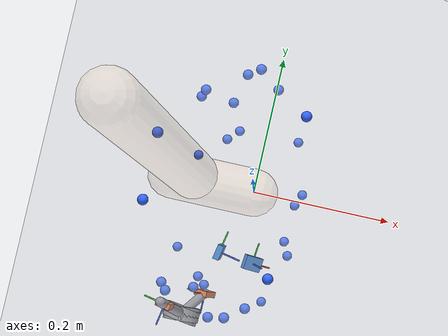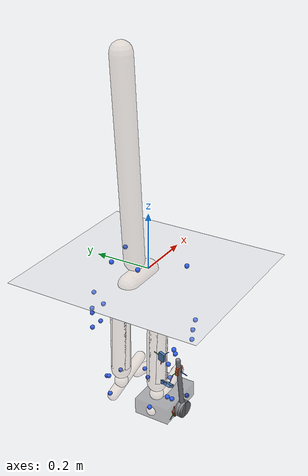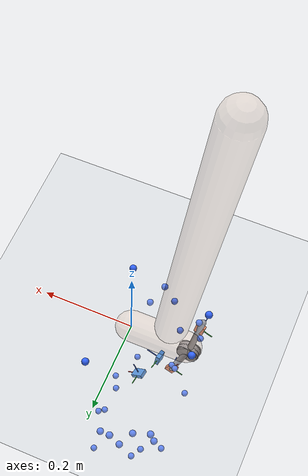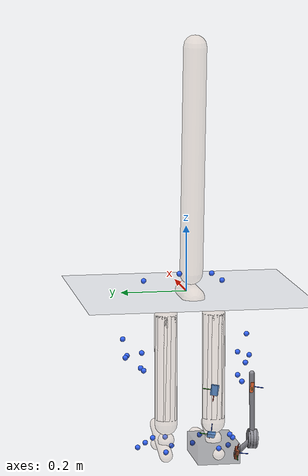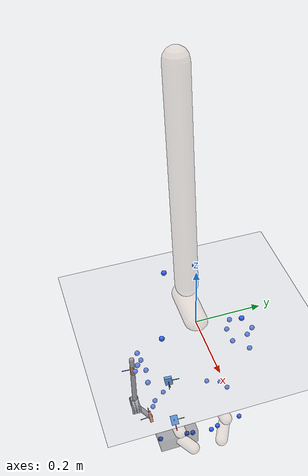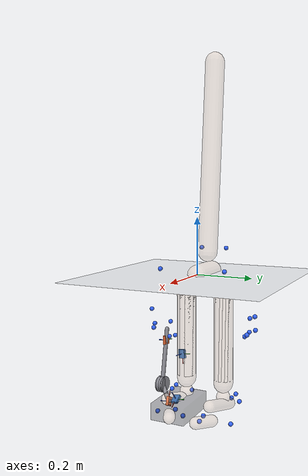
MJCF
<mujoco model="AB09">
  <compiler angle="radian" autolimits="true"/>
  <option timestep="0.005" gravity="0 0 -9.81"><flag contact="disable"/></option>
  <visual><global offwidth="1600" offheight="1200"/>
    <headlight ambient="0.55 0.55 0.55" diffuse="0.6 0.6 0.6"/></visual>
  <default><joint limited="false" damping="0"/><geom contype="0" conaffinity="0"/></default>
  <asset>
    <texture name="grid" type="2d" builtin="checker" rgb1="0.75 0.77 0.8" rgb2="0.85 0.87 0.9" width="512" height="512"/>
    <material name="grid" texture="grid" texrepeat="2 2" texuniform="true"/>
    <material name="skin" rgba="0.85 0.72 0.62 0.28"/>
  </asset>
  <worldbody>
    <light pos="0 0 4" dir="0 0 -1"/>
    <geom name="floor" type="plane" size="0 0 0.05" material="grid"/>
    <body name="pelvis" pos="0 0 0" quat="1 0 0 0">
      <joint name="pelvis_tx" type="slide" axis="1 0 0"/>
      <joint name="pelvis_ty" type="slide" axis="0 0 1"/>
      <joint name="pelvis_tz" type="slide" axis="0 -1 0"/>
      <joint name="pelvis_tilt" type="hinge" axis="0 -1 0"/>
      <joint name="pelvis_list" type="hinge" axis="1 0 0"/>
      <joint name="pelvis_rotation" type="hinge" axis="0 0 1"/>
      <inertial pos="-0.061859536 0 0" mass="10.3259" diaginertia="0.10325891 0.10325891 0.10325891"/>
      <geom type="capsule" fromto="0 0 0 -0.12371907 0 0" size="0.035" material="skin" mass="0"/>
      <site name="m_R_ASIS" pos="0.047509384 -0.11996831 0.020918417" size="0.008" rgba="0.2 0.4 1 1" group="2"/>
      <site name="m_L_ASIS" pos="0.050885207 0.12264417 0.025265311" size="0.008" rgba="0.2 0.4 1 1" group="2"/>
      <site name="m_L_PSIS" pos="-0.15024414 0.046888386 0.080831941" size="0.008" rgba="0.2 0.4 1 1" group="2"/>
      <site name="m_R_PSIS" pos="-0.14949448 -0.051097552 0.079398298" size="0.008" rgba="0.2 0.4 1 1" group="2"/>
      <body name="femur_r" pos="-0.061859536 -0.073058999 -0.057834729" quat="1 0 0 0">
        <joint name="hip_flexion_r" type="hinge" axis="0 -1 0"/>
        <joint name="hip_adduction_r" type="hinge" axis="1 0 0"/>
        <joint name="hip_rotation_r" type="hinge" axis="0 0 1"/>
        <inertial pos="0 0 -0.16166913" mass="8.15532" diaginertia="0.081553235 0.081553235 0.081553235"/>
        <geom type="capsule" fromto="0 0 0 0 0 -0.32333827" size="0.035" material="skin" mass="0"/>
        <site name="m_R_Thigh_Upper" pos="0.055259772 -0.11266386 -0.079839493" size="0.008" rgba="0.2 0.4 1 1" group="2"/>
        <site name="m_R_Thigh_Front" pos="0.082178671 -0.090508162 -0.14097637" size="0.008" rgba="0.2 0.4 1 1" group="2"/>
        <site name="m_R_Thigh_Rear" pos="0.028800814 -0.11614404 -0.14031222" size="0.008" rgba="0.2 0.4 1 1" group="2"/>
        <site name="m_R_Knee_Lat" pos="0.0011639015 -0.060341404 -0.38988233" size="0.008" rgba="0.2 0.4 1 1" group="2"/>
        <body name="tibia_r" pos="0 0 0" quat="1 0 0 0">
<geom name="gt_shank_axis_x" type="capsule" size="0.0012" fromto="0.02000 -0.00750 -0.24440 0.02248 -0.00285 -0.27900" rgba="1 0.1 0.1 1" contype="0" conaffinity="0" mass="0"/>
<geom name="gt_shank_axis_y" type="capsule" size="0.0012" fromto="0.02000 -0.00750 -0.24440 0.02676 0.02647 -0.23935" rgba="0.1 0.8 0.1 1" contype="0" conaffinity="0" mass="0"/>
<geom name="gt_shank_axis_z" type="capsule" size="0.0012" fromto="0.02000 -0.00750 -0.24440 0.05425 -0.01454 -0.24289" rgba="0.1 0.3 1 1" contype="0" conaffinity="0" mass="0"/>
<geom name="exo_shank_axis_x" type="capsule" size="0.0012" fromto="-0.04597 -0.10990 -0.22162 -0.05056 -0.11395 -0.18715" rgba="1 0.1 0.1 1" contype="0" conaffinity="0" mass="0"/>
<geom name="exo_shank_axis_y" type="capsule" size="0.0012" fromto="-0.04597 -0.10990 -0.22162 -0.08008 -0.10301 -0.22535" rgba="0.1 0.8 0.1 1" contype="0" conaffinity="0" mass="0"/>
<geom name="exo_shank_axis_z" type="capsule" size="0.0012" fromto="-0.04597 -0.10990 -0.22162 -0.05232 -0.14398 -0.22647" rgba="0.1 0.3 1 1" contype="0" conaffinity="0" mass="0"/>
<geom name="encoder_shank" type="cylinder" size="0.03 0.012" fromto="-0.02720 -0.12762 -0.38952 -0.02320 -0.10398 -0.38828" rgba="0.55 0.55 0.58 1" contype="0" conaffinity="0" mass="0"/>
<geom name="strut_shank" type="capsule" size="0.008" fromto="-0.02520 -0.11580 -0.38890 -0.05116 -0.10843 -0.17979" rgba="0.55 0.55 0.58 1" contype="0" conaffinity="0" mass="0"/>
          <joint name="knee_r_translation1" type="slide" axis="1 0 0"/>
          <joint name="knee_r_translation2" type="slide" axis="0 0 1"/>
          <joint name="knee_angle_r" type="hinge" axis="0 -1 0"/>
          <inertial pos="0 0 -0.16886778" mass="3.25068" diaginertia="0.032506786 0.032506786 0.032506786"/>
          <geom type="capsule" fromto="0 0 0 0 0 -0.33773556" size="0.035" material="skin" mass="0"/>
          <site name="m_R_Shank_Upper" pos="-0.04589035 -0.089503124 -0.14736246" size="0.008" rgba="0.2 0.4 1 1" group="2"/>
          <site name="m_R_Shank_Front" pos="-0.0060154318 -0.073565995 -0.19345982" size="0.008" rgba="0.2 0.4 1 1" group="2"/>
          <site name="m_R_Shank_Rear" pos="-0.058203396 -0.076594122 -0.20231413" size="0.008" rgba="0.2 0.4 1 1" group="2"/>
          <site name="m_R_Ankle_Lat" pos="-0.011310445 -0.048969108 -0.37708981" size="0.008" rgba="0.2 0.4 1 1" group="2"/>
          <site name="gt_shank_imu" type="box" size="0.016 0.012 0.005" pos="0.02 -0.0075 -0.2444" quat="0.72192216 0.11967651 0.68122838 -0.020828274" rgba="0.16 0.47 0.84 1" group="1"/>
          <site name="exo_shank_imu" type="box" size="0.016 0.012 0.005" pos="-0.045967 -0.109901 -0.221615" quat="-0.4813995 -0.45012343 0.60554885 -0.44604261" rgba="0.92 0.41 0.20 1" group="1"/>
          <body name="talus_r" pos="0 0 -0.38892954" quat="1 0 0 0">
            <joint name="ankle_angle_r" type="hinge" axis="-0.10501355 -0.97912632 -0.17402245"/>
            <inertial pos="0 0 0" mass="0.0876785" diaginertia="0.00087678452 0.00087678452 0.00087678452"/>
            <geom type="sphere" size="0.025" material="skin" mass="0"/>
            <body name="calcn_r" pos="-0.044111846 -0.0071635394 -0.037943242" quat="1 0 0 0">
<geom name="gt_foot_axis_x" type="capsule" size="0.0012" fromto="0.11690 0.00050 0.03060 0.14665 -0.00018 0.01217" rgba="1 0.1 0.1 1" contype="0" conaffinity="0" mass="0"/>
<geom name="gt_foot_axis_y" type="capsule" size="0.0012" fromto="0.11690 0.00050 0.03060 0.12088 0.03489 0.03575" rgba="0.1 0.8 0.1 1" contype="0" conaffinity="0" mass="0"/>
<geom name="gt_foot_axis_z" type="capsule" size="0.0012" fromto="0.11690 0.00050 0.03060 0.13490 -0.00598 0.05991" rgba="0.1 0.3 1 1" contype="0" conaffinity="0" mass="0"/>
<geom name="exo_foot_axis_x" type="capsule" size="0.0012" fromto="0.04782 -0.06562 -0.01281 0.03238 -0.06904 0.01841" rgba="1 0.1 0.1 1" contype="0" conaffinity="0" mass="0"/>
<geom name="exo_foot_axis_y" type="capsule" size="0.0012" fromto="0.04782 -0.06562 -0.01281 0.01641 -0.06379 -0.02814" rgba="0.1 0.8 0.1 1" contype="0" conaffinity="0" mass="0"/>
<geom name="exo_foot_axis_z" type="capsule" size="0.0012" fromto="0.04782 -0.06562 -0.01281 0.04769 -0.10040 -0.01668" rgba="0.1 0.3 1 1" contype="0" conaffinity="0" mass="0"/>
<geom name="encoder_foot" type="cylinder" size="0.03 0.012" fromto="0.01941 -0.12057 0.03731 0.01839 -0.09663 0.03849" rgba="0.55 0.55 0.58 1" contype="0" conaffinity="0" mass="0"/>
<geom name="strut_foot" type="capsule" size="0.008" fromto="0.01890 -0.10860 0.03790 0.04782 -0.06562 -0.01281" rgba="0.55 0.55 0.58 1" contype="0" conaffinity="0" mass="0"/>
<geom name="shoe" type="box" pos="0.08767 -0.00151 -0.00203" size="0.09472 0.06463 0.03000" rgba="0.15 0.15 0.18 0.35" contype="0" conaffinity="0" mass="0"/>
              <joint name="subtalar_angle_r" type="hinge" axis="0.78717961 0.12094949 0.60474746"/>
              <inertial pos="0.091558917 0 0.027467675" mass="1.09598" diaginertia="0.010959806 0.010959806 0.010959806"/>
              <geom type="capsule" fromto="0 0 0 0.18311783 0 0.05493535" size="0.02" material="skin" mass="0"/>
              <site name="m_R_Heel" pos="-0.014053918 0.00088698662 0.019688119" size="0.008" rgba="0.2 0.4 1 1" group="2"/>
              <site name="m_R_Toe_Lat" pos="0.14572705 -0.058528819 -0.012026914" size="0.008" rgba="0.2 0.4 1 1" group="2"/>
              <site name="m_R_Toe_Med" pos="0.16163951 0.050725072 -0.0047152613" size="0.008" rgba="0.2 0.4 1 1" group="2"/>
              <site name="m_R_Toe_Tip" pos="0.17239104 0.026644457 0.017856106" size="0.008" rgba="0.2 0.4 1 1" group="2"/>
              <site name="gt_foot_imu" type="box" size="0.016 0.012 0.005" pos="0.1169 0.0005 0.0306" quat="0.95784742 0.086699767 0.27166664 -0.034766369" rgba="0.16 0.47 0.84 1" group="1"/>
              <site name="exo_foot_imu" type="box" size="0.016 0.012 0.005" pos="0.047819 -0.06562 -0.012809" quat="-0.35368549 -0.39282115 0.63323382 -0.5653433" rgba="0.92 0.41 0.20 1" group="1"/>
              <body name="toes_r" pos="0.16370734 -0.00098883631 -0.0018311783" quat="1 0 0 0">
                <joint name="mtp_angle_r" type="hinge" axis="-0.5809544 -0.81393611 0"/>
                <inertial pos="0.031679385 0.016022811 0.005493535" mass="0.189912" diaginertia="0.0018991153 0.0018991153 0.0018991153"/>
                <geom type="capsule" fromto="0 0 0 0.063358771 0.032045621 0.01098707" size="0.02" material="skin" mass="0"/>
              </body>
            </body>
          </body>
        </body>
      </body>
      <body name="femur_l" pos="-0.061859536 0.073058999 -0.057834729" quat="1 0 0 0">
        <joint name="hip_flexion_l" type="hinge" axis="0 -1 0"/>
        <joint name="hip_adduction_l" type="hinge" axis="-1 0 0"/>
        <joint name="hip_rotation_l" type="hinge" axis="0 0 -1"/>
        <inertial pos="0 0 -0.16166913" mass="8.15532" diaginertia="0.081553235 0.081553235 0.081553235"/>
        <geom type="capsule" fromto="0 0 0 0 0 -0.32333827" size="0.035" material="skin" mass="0"/>
        <site name="m_L_Thigh_Upper" pos="0.027336746 0.12731034 -0.077692779" size="0.008" rgba="0.2 0.4 1 1" group="2"/>
        <site name="m_L_Thigh_Front" pos="0.058729679 0.11004407 -0.13593129" size="0.008" rgba="0.2 0.4 1 1" group="2"/>
        <site name="m_L_Thigh_Rear" pos="0.0066054329 0.12264841 -0.1308069" size="0.008" rgba="0.2 0.4 1 1" group="2"/>
        <site name="m_L_Knee_Lat" pos="0.0023916187 0.063435173 -0.39507377" size="0.008" rgba="0.2 0.4 1 1" group="2"/>
        <body name="tibia_l" pos="0 0 0" quat="1 0 0 0">
          <joint name="knee_l_translation1" type="slide" axis="1 0 0"/>
          <joint name="knee_l_translation2" type="slide" axis="0 0 1"/>
          <joint name="knee_angle_l" type="hinge" axis="0 -1 0"/>
          <inertial pos="0 0 -0.16886778" mass="3.25068" diaginertia="0.032506786 0.032506786 0.032506786"/>
          <geom type="capsule" fromto="0 0 0 0 0 -0.33773556" size="0.035" material="skin" mass="0"/>
          <site name="m_L_Shank_Upper" pos="-0.050923287 0.081503308 -0.10540389" size="0.008" rgba="0.2 0.4 1 1" group="2"/>
          <site name="m_L_Shank_Front" pos="-0.0068847115 0.078162699 -0.16131623" size="0.008" rgba="0.2 0.4 1 1" group="2"/>
          <site name="m_L_Shank_Rear" pos="-0.058609991 0.076851631 -0.15821118" size="0.008" rgba="0.2 0.4 1 1" group="2"/>
          <site name="m_L_Ankle_Lat" pos="-0.014515371 0.043030282 -0.37681326" size="0.008" rgba="0.2 0.4 1 1" group="2"/>
          <body name="talus_l" pos="0 0 -0.38892954" quat="1 0 0 0">
            <joint name="ankle_angle_l" type="hinge" axis="0.10501355 -0.97912632 0.17402245"/>
            <inertial pos="0 0 0" mass="0.0876785" diaginertia="0.00087678452 0.00087678452 0.00087678452"/>
            <geom type="sphere" size="0.025" material="skin" mass="0"/>
            <body name="calcn_l" pos="-0.044111846 0.0071635394 -0.037943242" quat="1 0 0 0">
              <joint name="subtalar_angle_l" type="hinge" axis="-0.78717961 0.12094949 -0.60474746"/>
              <inertial pos="0.091558917 0 0.027467675" mass="1.09598" diaginertia="0.010959806 0.010959806 0.010959806"/>
              <geom type="capsule" fromto="0 0 0 0.18311783 0 0.05493535" size="0.02" material="skin" mass="0"/>
              <site name="m_L_Heel" pos="-0.01436324 0.0026341954 0.014578318" size="0.008" rgba="0.2 0.4 1 1" group="2"/>
              <site name="m_L_Toe_Lat" pos="0.14825222 0.063589821 -0.0081519667" size="0.008" rgba="0.2 0.4 1 1" group="2"/>
              <site name="m_L_Toe_Med" pos="0.1655879 -0.044544973 -0.01159446" size="0.008" rgba="0.2 0.4 1 1" group="2"/>
              <site name="m_L_Toe_Tip" pos="0.17466944 -0.026047307 0.014800397" size="0.008" rgba="0.2 0.4 1 1" group="2"/>
              <body name="toes_l" pos="0.16370734 0.00098883631 -0.0018311783" quat="1 0 0 0">
                <joint name="mtp_angle_l" type="hinge" axis="0.5809544 -0.81393611 0"/>
                <inertial pos="0.031679385 -0.016022811 0.005493535" mass="0.189912" diaginertia="0.0018991153 0.0018991153 0.0018991153"/>
                <geom type="capsule" fromto="0 0 0 0.063358771 -0.032045621 0.01098707" size="0.02" material="skin" mass="0"/>
              </body>
            </body>
          </body>
        </body>
      </body>
      <body name="torso" pos="-0.088108278 0 0.071309083" quat="1 0 0 0">
        <joint name="lumbar_extension" type="hinge" axis="0 -1 0"/>
        <joint name="lumbar_bending" type="hinge" axis="1 0 0"/>
        <joint name="lumbar_rotation" type="hinge" axis="0 0 1"/>
        <inertial pos="-0.032017347 0 0.34151836" mass="30.0181" diaginertia="0.30018121 0.30018121 0.30018121"/>
        <geom type="capsule" fromto="0 0 0 -0.064034693 0 0.68303673" size="0.035" material="skin" mass="0"/>
      </body>
    </body>
  </worldbody>
  <sensor>
<accelerometer name="gt_foot_imu_acc" site="gt_foot_imu"/>
<gyro name="gt_foot_imu_gyr" site="gt_foot_imu"/>
<accelerometer name="exo_foot_imu_acc" site="exo_foot_imu"/>
<gyro name="exo_foot_imu_gyr" site="exo_foot_imu"/>
<accelerometer name="gt_shank_imu_acc" site="gt_shank_imu"/>
<gyro name="gt_shank_imu_gyr" site="gt_shank_imu"/>
<accelerometer name="exo_shank_imu_acc" site="exo_shank_imu"/>
<gyro name="exo_shank_imu_gyr" site="exo_shank_imu"/>
</sensor>
</mujoco>
